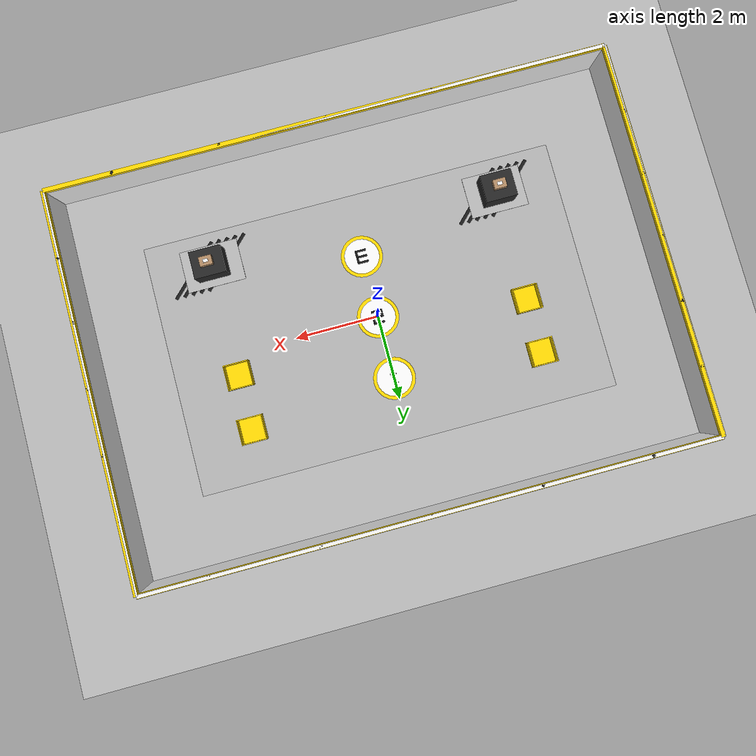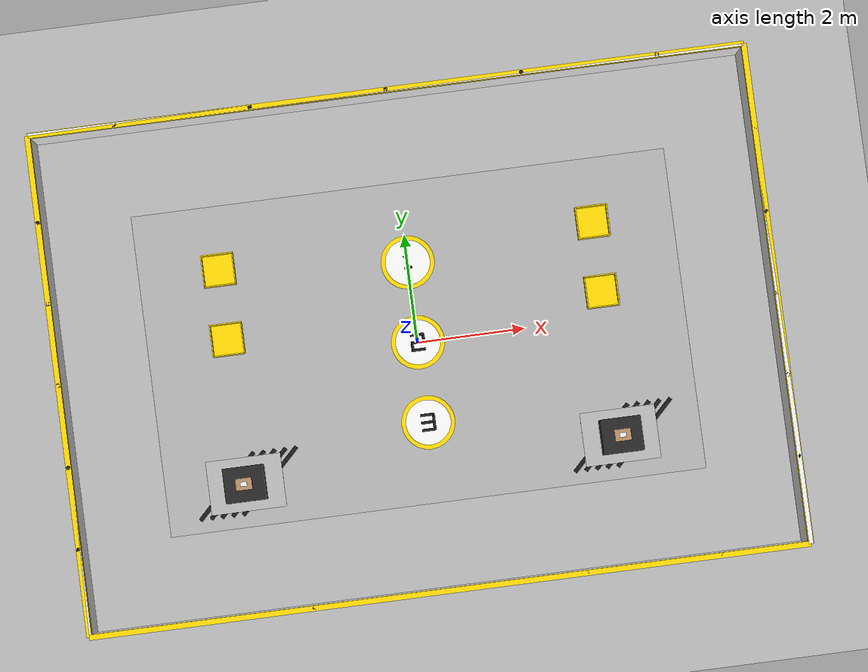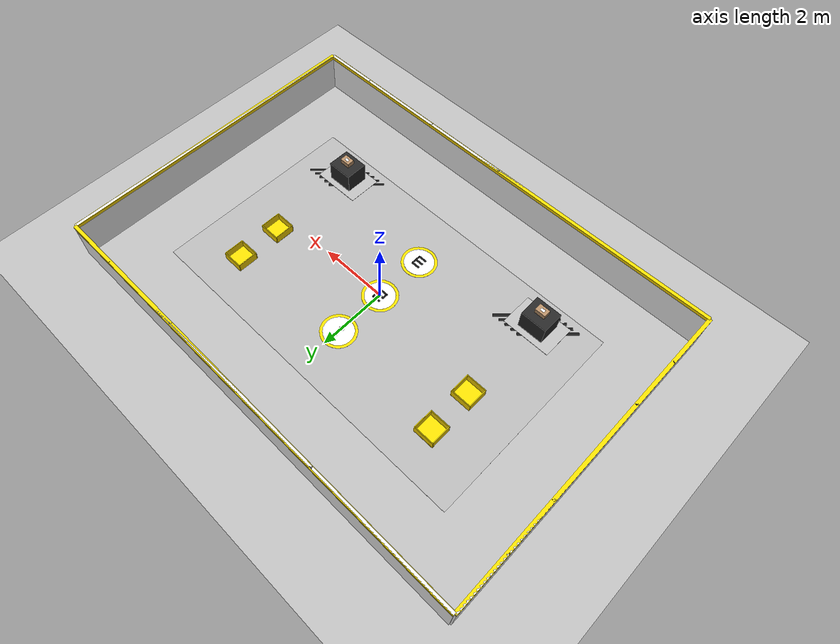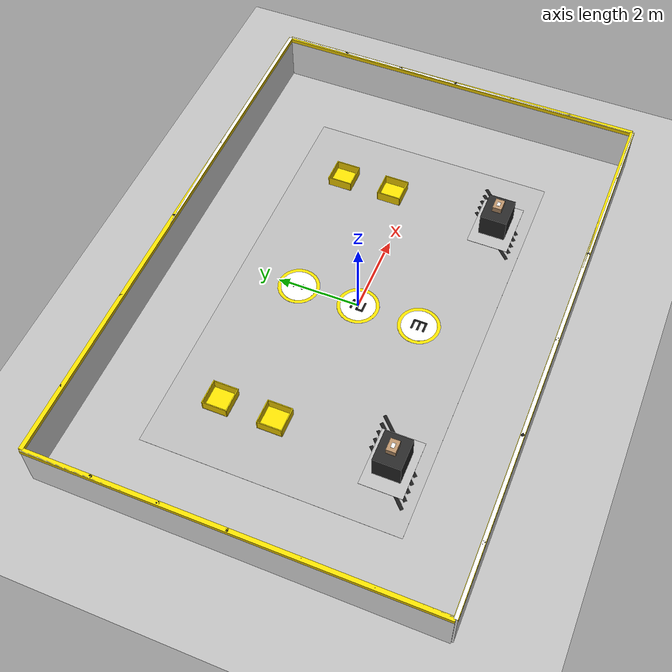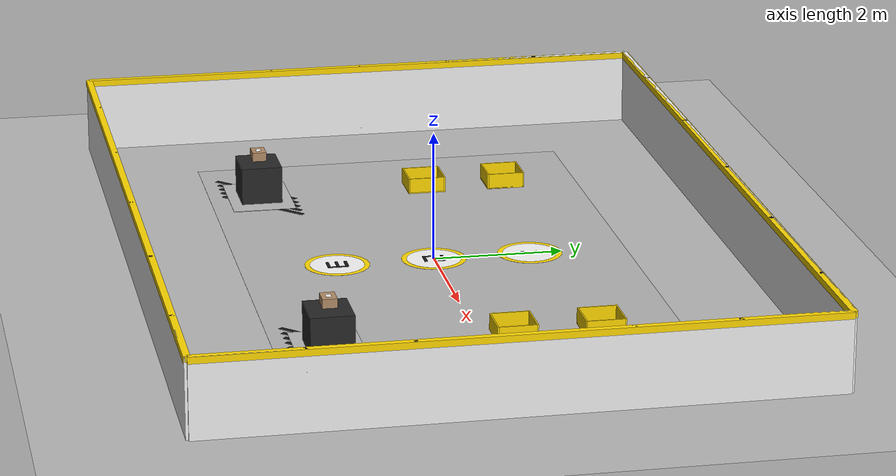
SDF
<?xml version="1.0"?>
<sdf version="1.6">
  <world name="warehouse_exact">

    <!-- Physique -->
    <physics name="default_physics" default="0" type="ode">
      <max_step_size>0.001</max_step_size>
      <real_time_factor>1</real_time_factor>
      <real_time_update_rate>1000</real_time_update_rate>
    </physics>

    <!-- Scène -->
    <scene>
      <ambient>0.6 0.6 0.6 1</ambient>
      <background>0.7 0.7 0.7 1</background>
      <shadows>true</shadows>
    </scene>

    <!-- Éclairage principal -->
    <include>
      <uri>model://sun</uri>
    </include>

    <!-- Lumières supplémentaires -->
    <light name="warehouse_light_1" type="point">
      <pose>0 0 5 0 0 0</pose>
      <diffuse>0.8 0.8 0.8 1</diffuse>
      <specular>0.2 0.2 0.2 1</specular>
      <attenuation>
        <range>20</range>
        <constant>0.5</constant>
        <linear>0.01</linear>
        <quadratic>0.001</quadratic>
      </attenuation>
      <cast_shadows>true</cast_shadows>
    </light>

    <!-- Sol gris clair uniforme -->
    <model name="ground_plane">
      <static>true</static>
      <link name="link">
        <collision name="collision">
          <geometry>
            <plane>
              <normal>0 0 1</normal>
              <size>100 100</size>
            </plane>
          </geometry>
          <surface>
            <friction>
              <ode>
                <mu>100</mu>
                <mu2>50</mu2>
              </ode>
            </friction>
          </surface>
        </collision>
        <visual name="visual">
          <cast_shadows>false</cast_shadows>
          <geometry>
            <plane>
              <normal>0 0 1</normal>
              <size>100 100</size>
            </plane>
          </geometry>
          <material>
            <ambient>0.72 0.72 0.72 1</ambient>
            <diffuse>0.72 0.72 0.72 1</diffuse>
          </material>
        </visual>
      </link>
    </model>

    <!-- Zone principale grise (10m x 6m) -->
    <model name="main_floor_afvrea">
      <pose>0 0 0.001 0 0 0</pose>
      <static>true</static>
      <link name="link">
        <visual name="visual">
          <geometry>
            <box>
              <size>10 6 0.002</size>
            </box>
          </geometry>
          <material>
            <ambient>0.70 0.70 0.70 1</ambient>
            <diffuse>0.70 0.70 0.70 1</diffuse>
          </material>
        </visual>
      </link>
    </model>

    <!-- ===== BARRIÈRES MODULAIRES BLANCHES ===== -->

    <!-- Barrière Nord -->
    <model name="barrier_north">
      <pose>0 4.6 0.6 0 0 0</pose>
      <static>false</static>
      <link name="link">
        <collision name="collision">
          <geometry>
            <box>
              <size>13.2 0.08 1.2</size>
            </box>
          </geometry>
        </collision>
        <visual name="panel">
          <geometry>
            <box>
              <size>13.2 0.08 1.2</size>
            </box>
          </geometry>
          <material>
            <ambient>0.95 0.95 0.95 1</ambient>
            <diffuse>0.95 0.95 0.95 1</diffuse>
          </material>
        </visual>
        <visual name="yellow_top">
          <pose>0 0 0.55 0 0 0</pose>
          <geometry>
            <box>
              <size>13.2 0.1 0.1</size>
            </box>
          </geometry>
          <material>
            <ambient>1 0.85 0 1</ambient>
            <diffuse>1 0.85 0 1</diffuse>
          </material>
        </visual>
      </link>
      <link name="support_1">
        <pose>-5 0 0 0 0 0</pose>
        <visual name="visual">
          <geometry>
            <cylinder>
              <radius>0.04</radius>
              <length>1.2</length>
            </cylinder>
          </geometry>
          <material>
            <ambient>0.1 0.1 0.1 1</ambient>
            <diffuse>0.1 0.1 0.1 1</diffuse>
          </material>
        </visual>
      </link>
      <link name="support_2">
        <pose>-2.5 0 0 0 0 0</pose>
        <visual name="visual">
          <geometry>
            <cylinder>
              <radius>0.04</radius>
              <length>1.2</length>
            </cylinder>
          </geometry>
          <material>
            <ambient>0.1 0.1 0.1 1</ambient>
            <diffuse>0.1 0.1 0.1 1</diffuse>
          </material>
        </visual>
      </link>
      <link name="support_3">
        <pose>0 0 0 0 0 0</pose>
        <visual name="visual">
          <geometry>
            <cylinder>
              <radius>0.04</radius>
              <length>1.2</length>
            </cylinder>
          </geometry>
          <material>
            <ambient>0.1 0.1 0.1 1</ambient>
            <diffuse>0.1 0.1 0.1 1</diffuse>
          </material>
        </visual>
      </link>
      <link name="support_4">
        <pose>2.5 0 0 0 0 0</pose>
        <visual name="visual">
          <geometry>
            <cylinder>
              <radius>0.04</radius>
              <length>1.2</length>
            </cylinder>
          </geometry>
          <material>
            <ambient>0.1 0.1 0.1 1</ambient>
            <diffuse>0.1 0.1 0.1 1</diffuse>
          </material>
        </visual>
      </link>
      <link name="support_5">
        <pose>5 0 0 0 0 0</pose>
        <visual name="visual">
          <geometry>
            <cylinder>
              <radius>0.04</radius>
              <length>1.2</length>
            </cylinder>
          </geometry>
          <material>
            <ambient>0.1 0.1 0.1 1</ambient>
            <diffuse>0.1 0.1 0.1 1</diffuse>
          </material>
        </visual>
      </link>
    </model>

    <!-- Barrière Sud -->
    <model name="barrier_south">
      <pose>0 -4.6 0.6 0 0 0</pose>
      <static>true</static>
      <link name="link">
        <collision name="collision">
          <geometry>
            <box>
              <size>13.2 0.08 1.2</size>
            </box>
          </geometry>
        </collision>
        <visual name="panel">
          <geometry>
            <box>
              <size>13.2 0.08 1.2</size>
            </box>
          </geometry>
          <material>
            <ambient>0.95 0.95 0.95 1</ambient>
            <diffuse>0.95 0.95 0.95 1</diffuse>
          </material>
        </visual>
        <visual name="yellow_top">
          <pose>0 0 0.55 0 0 0</pose>
          <geometry>
            <box>
              <size>13.2 0.1 0.1</size>
            </box>
          </geometry>
          <material>
            <ambient>1 0.85 0 1</ambient>
            <diffuse>1 0.85 0 1</diffuse>
          </material>
        </visual>
      </link>
      <link name="support_1">
        <pose>-5 0 0 0 0 0</pose>
        <visual name="visual">
          <geometry>
            <cylinder>
              <radius>0.04</radius>
              <length>1.2</length>
            </cylinder>
          </geometry>
          <material>
            <ambient>0.1 0.1 0.1 1</ambient>
            <diffuse>0.1 0.1 0.1 1</diffuse>
          </material>
        </visual>
      </link>
      <link name="support_2">
        <pose>-2.5 0 0 0 0 0</pose>
        <visual name="visual">
          <geometry>
            <cylinder>
              <radius>0.04</radius>
              <length>1.2</length>
            </cylinder>
          </geometry>
          <material>
            <ambient>0.1 0.1 0.1 1</ambient>
            <diffuse>0.1 0.1 0.1 1</diffuse>
          </material>
        </visual>
      </link>
      <link name="support_3">
        <pose>0 0 0 0 0 0</pose>
        <visual name="visual">
          <geometry>
            <cylinder>
              <radius>0.04</radius>
              <length>1.2</length>
            </cylinder>
          </geometry>
          <material>
            <ambient>0.1 0.1 0.1 1</ambient>
            <diffuse>0.1 0.1 0.1 1</diffuse>
          </material>
        </visual>
      </link>
      <link name="support_4">
        <pose>2.5 0 0 0 0 0</pose>
        <visual name="visual">
          <geometry>
            <cylinder>
              <radius>0.04</radius>
              <length>1.2</length>
            </cylinder>
          </geometry>
          <material>
            <ambient>0.1 0.1 0.1 1</ambient>
            <diffuse>0.1 0.1 0.1 1</diffuse>
          </material>
        </visual>
      </link>
      <link name="support_5">
        <pose>5 0 0 0 0 0</pose>
        <visual name="visual">
          <geometry>
            <cylinder>
              <radius>0.04</radius>
              <length>1.2</length>
            </cylinder>
          </geometry>
          <material>
            <ambient>0.1 0.1 0.1 1</ambient>
            <diffuse>0.1 0.1 0.1 1</diffuse>
          </material>
        </visual>
      </link>
    </model>

    <!-- Barrière Est -->
    <model name="barrier_east">
      <pose>6.6 0 0.6 0 0 0</pose>
      <static>true</static>
      <link name="link">
        <collision name="collision">
          <geometry>
            <box>
              <size>0.08 9.2 1.2</size>
            </box>
          </geometry>
        </collision>
        <visual name="panel">
          <geometry>
            <box>
              <size>0.08 9.2 1.2</size>
            </box>
          </geometry>
          <material>
            <ambient>0.95 0.95 0.95 1</ambient>
            <diffuse>0.95 0.95 0.95 1</diffuse>
          </material>
        </visual>
        <visual name="yellow_top">
          <pose>0 0 0.55 0 0 0</pose>
          <geometry>
            <box>
              <size>0.1 9.2 0.1</size>
            </box>
          </geometry>
          <material>
            <ambient>1 0.85 0 1</ambient>
            <diffuse>1 0.85 0 1</diffuse>
          </material>
        </visual>
      </link>
      <link name="support_1">
        <pose>0 -3 0 0 0 0</pose>
        <visual name="visual">
          <geometry>
            <cylinder>
              <radius>0.04</radius>
              <length>1.2</length>
            </cylinder>
          </geometry>
          <material>
            <ambient>0.1 0.1 0.1 1</ambient>
            <diffuse>0.1 0.1 0.1 1</diffuse>
          </material>
        </visual>
      </link>
      <link name="support_2">
        <pose>0 -1.5 0 0 0 0</pose>
        <visual name="visual">
          <geometry>
            <cylinder>
              <radius>0.04</radius>
              <length>1.2</length>
            </cylinder>
          </geometry>
          <material>
            <ambient>0.1 0.1 0.1 1</ambient>
            <diffuse>0.1 0.1 0.1 1</diffuse>
          </material>
        </visual>
      </link>
      <link name="support_3">
        <pose>0 0 0 0 0 0</pose>
        <visual name="visual">
          <geometry>
            <cylinder>
              <radius>0.04</radius>
              <length>1.2</length>
            </cylinder>
          </geometry>
          <material>
            <ambient>0.1 0.1 0.1 1</ambient>
            <diffuse>0.1 0.1 0.1 1</diffuse>
          </material>
        </visual>
      </link>
      <link name="support_4">
        <pose>0 1.5 0 0 0 0</pose>
        <visual name="visual">
          <geometry>
            <cylinder>
              <radius>0.04</radius>
              <length>1.2</length>
            </cylinder>
          </geometry>
          <material>
            <ambient>0.1 0.1 0.1 1</ambient>
            <diffuse>0.1 0.1 0.1 1</diffuse>
          </material>
        </visual>
      </link>
      <link name="support_5">
        <pose>0 3 0 0 0 0</pose>
        <visual name="visual">
          <geometry>
            <cylinder>
              <radius>0.04</radius>
              <length>1.2</length>
            </cylinder>
          </geometry>
          <material>
            <ambient>0.1 0.1 0.1 1</ambient>
            <diffuse>0.1 0.1 0.1 1</diffuse>
          </material>
        </visual>
      </link>
    </model>

    <!-- Barrière Ouest -->
    <model name="barrier_west">
      <pose>-6.6 0 0.6 0 0 0</pose>
      <static>true</static>
      <link name="link">
        <collision name="collision">
          <geometry>
            <box>
              <size>0.08 9.2 1.2</size>
            </box>
          </geometry>
        </collision>
        <visual name="panel">
          <geometry>
            <box>
              <size>0.08 9.2 1.2</size>
            </box>
          </geometry>
          <material>
            <ambient>0.95 0.95 0.95 1</ambient>
            <diffuse>0.95 0.95 0.95 1</diffuse>
          </material>
        </visual>
        <visual name="yellow_top">
          <pose>0 0 0.55 0 0 0</pose>
          <geometry>
            <box>
              <size>0.1 9.2 0.1</size>
            </box>
          </geometry>
          <material>
            <ambient>1 0.85 0 1</ambient>
            <diffuse>1 0.85 0 1</diffuse>
          </material>
        </visual>
      </link>
      <link name="support_1">
        <pose>0 -3 0 0 0 0</pose>
        <visual name="visual">
          <geometry>
            <cylinder>
              <radius>0.04</radius>
              <length>1.2</length>
            </cylinder>
          </geometry>
          <material>
            <ambient>0.1 0.1 0.1 1</ambient>
            <diffuse>0.1 0.1 0.1 1</diffuse>
          </material>
        </visual>
      </link>
      <link name="support_2">
        <pose>0 -1.5 0 0 0 0</pose>
        <visual name="visual">
          <geometry>
            <cylinder>
              <radius>0.04</radius>
              <length>1.2</length>
            </cylinder>
          </geometry>
          <material>
            <ambient>0.1 0.1 0.1 1</ambient>
            <diffuse>0.1 0.1 0.1 1</diffuse>
          </material>
        </visual>
      </link>
      <link name="support_3">
        <pose>0 0 0 0 0 0</pose>
        <visual name="visual">
          <geometry>
            <cylinder>
              <radius>0.04</radius>
              <length>1.2</length>
            </cylinder>
          </geometry>
          <material>
            <ambient>0.1 0.1 0.1 1</ambient>
            <diffuse>0.1 0.1 0.1 1</diffuse>
          </material>
        </visual>
      </link>
      <link name="support_4">
        <pose>0 1.5 0 0 0 0</pose>
        <visual name="visual">
          <geometry>
            <cylinder>
              <radius>0.04</radius>
              <length>1.2</length>
            </cylinder>
          </geometry>
          <material>
            <ambient>0.1 0.1 0.1 1</ambient>
            <diffuse>0.1 0.1 0.1 1</diffuse>
          </material>
        </visual>
      </link>
      <link name="support_5">
        <pose>0 3 0 0 0 0</pose>
        <visual name="visual">
          <geometry>
            <cylinder>
              <radius>0.04</radius>
              <length>1.2</length>
            </cylinder>
          </geometry>
          <material>
            <ambient>0.1 0.1 0.1 1</ambient>
            <diffuse>0.1 0.1 0.1 1</diffuse>
          </material>
        </visual>
      </link>
    </model>

    <!-- ===== CERCLES DE POSITIONNEMENT ===== -->

    <!-- Cercle 1 (haut) -->
    <model name="position_circle_1">
      <pose>0 1.5 0.002 0 0 0</pose>
      <static>true</static>
      <link name="link">
        <visual name="yellow_outer">
          <geometry>
            <cylinder>
              <radius>0.50</radius>
              <length>0.004</length>
            </cylinder>
          </geometry>
          <material>
            <ambient>1 0.85 0 1</ambient>
            <diffuse>1 0.85 0 1</diffuse>
          </material>
        </visual>
        <visual name="white_center">
          <pose>0 0 0.001 0 0 0</pose>
          <geometry>
            <cylinder>
              <radius>0.42</radius>
              <length>0.004</length>
            </cylinder>
          </geometry>
          <material>
            <ambient>0.98 0.98 0.98 1</ambient>
            <diffuse>0.98 0.98 0.98 1</diffuse>
          </material>
        </visual>
      <!-- ===== CHIFFRE 1 ===== -->
      <visual name="number_1_hat">
        <pose>-0.03 0.12 0.002 0 0 0.4</pose>
        <geometry>
          <box>
            <size>0.08 0.03 0.004</size>
          </box>
        </geometry>
        <material>
          <ambient>0.1 0.1 0.1 1</ambient>
          <diffuse>0.1 0.1 0.1 1</diffuse>
        </material>
      </visual>
      <!-- Barre verticale -->
      <visual name="number_1_body">
        <pose>0 0.04 0.002 0 0 0</pose>
        <geometry>
          <box>
            <size>0.06 0.26 0.004</size>
          </box>
        </geometry>
        <material>
          <ambient>0.1 0.1 0.1 1</ambient>
          <diffuse>0.1 0.1 0.1 1</diffuse>
        </material>
      </visual>
      <!-- Base du 1 -->
      <visual name="number_1_base">
        <pose>0 -0.10 0.002 0 0 0</pose>
        <geometry>
          <box>
            <size>0.14 0.05 0.004</size>
          </box>
        </geometry>
        <material>
          <ambient>0.1 0.1 0.1 1</ambient>
          <diffuse>0.1 0.1 0.1 1</diffuse>
        </material>
      </visual>

      </link>
    </model>

    <!-- Cercle 2 (milieu) -->
    <model name="position_circle_2">
      <pose>0 0 0.002 0 0 0</pose>
      <static>true</static>
      <link name="link">
        <visual name="yellow_outer">
          <geometry>
            <cylinder>
              <radius>0.50</radius>
              <length>0.004</length>
            </cylinder>
          </geometry>
          <material>
            <ambient>1 0.85 0 1</ambient>
            <diffuse>1 0.85 0 1</diffuse>
          </material>
        </visual>
        <visual name="white_center">
          <pose>0 0 0.001 0 0 0</pose>
          <geometry>
            <cylinder>
              <radius>0.42</radius>
              <length>0.004</length>
            </cylinder>
          </geometry>
          <material>
            <ambient>0.98 0.98 0.98 1</ambient>
            <diffuse>0.98 0.98 0.98 1</diffuse>
          </material>
        </visual>
      <!-- ===== CHIFFRE 2 ===== -->

        <!-- Segment A (haut) -->
        <visual name="seg_A">
          <pose>0 0.14 0.002 0 0 0</pose>
          <geometry>
            <box>
              <size>0.26 0.05 0.004</size>
            </box>
          </geometry>
          <material>
            <ambient>0.1 0.1 0.1 1</ambient>
            <diffuse>0.1 0.1 0.1 1</diffuse>
          </material>
        </visual>

        <!-- Segment B (haut droite) -->
        <visual name="seg_B">
          <pose>0.11 0.05 0.002 0 0 0</pose>
          <geometry>
            <box>
              <size>0.05 0.18 0.004</size>
            </box>
          </geometry>
          <material>
            <ambient>0.1 0.1 0.1 1</ambient>
            <diffuse>0.1 0.1 0.1 1</diffuse>
          </material>
        </visual>

        <!-- Segment G (milieu) -->
        <visual name="seg_G">
          <pose>0 0.00 0.002 0 0 0</pose>
          <geometry>
            <box>
              <size>0.26 0.05 0.004</size>
            </box>
          </geometry>
          <material>
            <ambient>0.1 0.1 0.1 1</ambient>
            <diffuse>0.1 0.1 0.1 1</diffuse>
          </material>
        </visual>

        <!-- Segment E (bas gauche) -->
        <visual name="seg_E">
          <pose>-0.11 -0.07 0.002 0 0 0</pose>
          <geometry>
            <box>
              <size>0.05 0.18 0.004</size>
            </box>
          </geometry>
          <material>
            <ambient>0.1 0.1 0.1 1</ambient>
            <diffuse>0.1 0.1 0.1 1</diffuse>
          </material>
        </visual>

        <!-- Segment D (bas) -->
        <visual name="seg_D">
          <pose>0 -0.14 0.002 0 0 0</pose>
          <geometry>
            <box>
              <size>0.26 0.05 0.004</size>
            </box>
          </geometry>
          <material>
            <ambient>0.1 0.1 0.1 1</ambient>
            <diffuse>0.1 0.1 0.1 1</diffuse>
          </material>
        </visual>

      </link>
    </model>

    <!-- Cercle 3 (bas) -->
    <model name="position_circle_3">
      <pose>0 -1.5 0.002 0 0 0</pose>
      <static>true</static>
      <link name="link">
        <visual name="yellow_outer">
          <geometry>
            <cylinder>
              <radius>0.50</radius>
              <length>0.004</length>
            </cylinder>
          </geometry>
          <material>
            <ambient>1 0.85 0 1</ambient>
            <diffuse>1 0.85 0 1</diffuse>
          </material>
        </visual>
        <visual name="white_center">
          <pose>0 0 0.001 0 0 0</pose>
          <geometry>
            <cylinder>
              <radius>0.42</radius>
              <length>0.004</length>
            </cylinder>
          </geometry>
          <material>
            <ambient>0.98 0.98 0.98 1</ambient>
            <diffuse>0.98 0.98 0.98 1</diffuse>
          </material>
        </visual>
        <!-- ===== CHIFFRE 3 (STYLE DIGITAL) ===== -->

        <!-- Segment A (haut) -->
        <visual name="seg_A">
          <pose>0 0.14 0.002 0 0 0</pose>
          <geometry>
            <box>
              <size>0.26 0.05 0.004</size>
            </box>
          </geometry>
          <material>
            <ambient>0.1 0.1 0.1 1</ambient>
            <diffuse>0.1 0.1 0.1 1</diffuse>
          </material>
        </visual>

        <!-- Segment B (haut droite) -->
        <visual name="seg_B">
          <pose>0.11 0.05 0.002 0 0 0</pose>
          <geometry>
            <box>
              <size>0.05 0.18 0.004</size>
            </box>
          </geometry>
          <material>
            <ambient>0.1 0.1 0.1 1</ambient>
            <diffuse>0.1 0.1 0.1 1</diffuse>
          </material>
        </visual>

        <!-- Segment G (milieu) -->
        <visual name="seg_G">
          <pose>0 0.00 0.002 0 0 0</pose>
          <geometry>
            <box>
              <size>0.26 0.05 0.004</size>
            </box>
          </geometry>
          <material>
            <ambient>0.1 0.1 0.1 1</ambient>
            <diffuse>0.1 0.1 0.1 1</diffuse>
          </material>
        </visual>

        <!-- Segment C (bas droite) -->
        <visual name="seg_C">
          <pose>0.11 -0.07 0.002 0 0 0</pose>
          <geometry>
            <box>
              <size>0.05 0.18 0.004</size>
            </box>
          </geometry>
          <material>
            <ambient>0.1 0.1 0.1 1</ambient>
            <diffuse>0.1 0.1 0.1 1</diffuse>
          </material>
        </visual>

        <!-- Segment D (bas) -->
        <visual name="seg_D">
          <pose>0 -0.14 0.002 0 0 0</pose>
          <geometry>
            <box>
              <size>0.26 0.05 0.004</size>
            </box>
          </geometry>
          <material>
            <ambient>0.1 0.1 0.1 1</ambient>
            <diffuse>0.1 0.1 0.1 1</diffuse>
          </material>
        </visual>

      </link>
    </model>

    <!-- ===== CAISSES JAUNES (4 au total) ===== -->

    <!-- Caisse gauche haut -->

    <model name="yellow_crate_left_top">
      <pose>-3.5 1.8 0.125 0 0 0</pose>
      <static>true</static>

      <!-- FOND -->
      <link name="bottom">
        <pose>0 0 -0.115 0 0 0</pose>
        <collision name="collision">
          <geometry>
            <box>
              <size>0.6 0.6 0.02</size>
            </box>
          </geometry>
        </collision>
        <visual name="visual">
          <geometry>
            <box>
              <size>0.6 0.6 0.02</size>
            </box>
          </geometry>
          <material>
            <ambient>1 0.85 0 1</ambient>
            <diffuse>1 0.85 0 1</diffuse>
          </material>
        </visual>
      </link>

      <!-- MUR AVANT -->
      <link name="wall_front">
        <pose>0 0.29 0 0 0 0</pose>
        <collision name="collision">
          <geometry>
            <box>
              <size>0.6 0.02 0.25</size>
            </box>
          </geometry>
        </collision>
        <visual name="visual">
          <geometry>
            <box>
              <size>0.6 0.02 0.25</size>
            </box>
          </geometry>
          <material>
            <ambient>1 0.85 0 1</ambient>
            <diffuse>1 0.85 0 1</diffuse>
          </material>
        </visual>
      </link>

      <!-- MUR ARRIÈRE -->
      <link name="wall_back">
        <pose>0 -0.29 0 0 0 0</pose>
        <collision name="collision">
          <geometry>
            <box>
              <size>0.6 0.02 0.25</size>
            </box>
          </geometry>
        </collision>
        <visual name="visual">
          <geometry>
            <box>
              <size>0.6 0.02 0.25</size>
            </box>
          </geometry>
          <material>
            <ambient>1 0.85 0 1</ambient>
            <diffuse>1 0.85 0 1</diffuse>
          </material>
        </visual>
      </link>

      <!-- MUR GAUCHE -->
      <link name="wall_left">
        <pose>-0.29 0 0 0 0 0</pose>
        <collision name="collision">
          <geometry>
            <box>
              <size>0.02 0.56 0.25</size>
            </box>
          </geometry>
        </collision>
        <visual name="visual">
          <geometry>
            <box>
              <size>0.02 0.56 0.25</size>
            </box>
          </geometry>
          <material>
            <ambient>1 0.85 0 1</ambient>
            <diffuse>1 0.85 0 1</diffuse>
          </material>
        </visual>
      </link>

      <!-- MUR DROIT -->
      <link name="wall_right">
        <pose>0.29 0 0 0 0 0</pose>
        <collision name="collision">
          <geometry>
            <box>
              <size>0.02 0.56 0.25</size>
            </box>
          </geometry>
        </collision>
        <visual name="visual">
          <geometry>
            <box>
              <size>0.02 0.56 0.25</size>
            </box>
          </geometry>
          <material>
            <ambient>1 0.85 0 1</ambient>
            <diffuse>1 0.85 0 1</diffuse>
          </material>
        </visual>
      </link>

    </model>

    <!-- Caisse gauche milieu -->
    <!-- ===== BAC JAUNE CREUX (gauche milieu) ===== -->
    <model name="yellow_crate_left_middle">
        <pose>-3.5 0.5 0.125 0 0 0</pose>
        <static>true</static>

        <!-- FOND -->
        <link name="bottom">
          <pose>0 0 -0.115 0 0 0</pose>
          <collision name="collision">
            <geometry>
              <box>
                <size>0.6 0.6 0.02</size>
              </box>
            </geometry>
          </collision>
          <visual name="visual">
            <geometry>
              <box>
                <size>0.6 0.6 0.02</size>
              </box>
            </geometry>
            <material>
              <ambient>1 0.85 0 1</ambient>
              <diffuse>1 0.85 0 1</diffuse>
            </material>
          </visual>
        </link>

        <!-- MUR AVANT -->
        <link name="wall_front">
          <pose>0 0.29 0 0 0 0</pose>
          <collision name="collision">
            <geometry>
              <box>
                <size>0.6 0.02 0.25</size>
              </box>
            </geometry>
          </collision>
          <visual name="visual">
            <geometry>
              <box>
                <size>0.6 0.02 0.25</size>
              </box>
            </geometry>
            <material>
              <ambient>1 0.85 0 1</ambient>
              <diffuse>1 0.85 0 1</diffuse>
            </material>
          </visual>
        </link>

        <!-- MUR ARRIÈRE -->
        <link name="wall_back">
          <pose>0 -0.29 0 0 0 0</pose>
          <collision name="collision">
            <geometry>
              <box>
                <size>0.6 0.02 0.25</size>
              </box>
            </geometry>
          </collision>
          <visual name="visual">
            <geometry>
              <box>
                <size>0.6 0.02 0.25</size>
              </box>
            </geometry>
            <material>
              <ambient>1 0.85 0 1</ambient>
              <diffuse>1 0.85 0 1</diffuse>
            </material>
          </visual>
        </link>

        <!-- MUR GAUCHE -->
        <link name="wall_left">
          <pose>-0.29 0 0 0 0 0</pose>
          <collision name="collision">
            <geometry>
              <box>
                <size>0.02 0.56 0.25</size>
              </box>
            </geometry>
          </collision>
          <visual name="visual">
            <geometry>
              <box>
                <size>0.02 0.56 0.25</size>
              </box>
            </geometry>
            <material>
              <ambient>1 0.85 0 1</ambient>
              <diffuse>1 0.85 0 1</diffuse>
            </material>
          </visual>
        </link>

        <!-- MUR DROIT -->
        <link name="wall_right">
          <pose>0.29 0 0 0 0 0</pose>
          <collision name="collision">
            <geometry>
              <box>
                <size>0.02 0.56 0.25</size>
              </box>
            </geometry>
          </collision>
          <visual name="visual">
            <geometry>
              <box>
                <size>0.02 0.56 0.25</size>
              </box>
            </geometry>
            <material>
              <ambient>1 0.85 0 1</ambient>
              <diffuse>1 0.85 0 1</diffuse>
            </material>
          </visual>
        </link>

    </model>

    <!-- Caisse droite haut -->
    <!-- ===== BAC JAUNE CREUX (droite haut) ===== -->
    <model name="yellow_crate_right_top">
      <pose>3.5 1.8 0.125 0 0 0</pose>
      <static>true</static>

      <!-- FOND -->
      <link name="bottom">
        <pose>0 0 -0.115 0 0 0</pose>
        <collision name="collision">
          <geometry>
            <box>
              <size>0.6 0.6 0.02</size>
            </box>
          </geometry>
        </collision>
        <visual name="visual">
          <geometry>
            <box>
              <size>0.6 0.6 0.02</size>
            </box>
          </geometry>
          <material>
            <ambient>1 0.85 0 1</ambient>
            <diffuse>1 0.85 0 1</diffuse>
          </material>
        </visual>
      </link>

      <!-- MUR AVANT -->
      <link name="wall_front">
        <pose>0 0.29 0 0 0 0</pose>
        <collision name="collision">
          <geometry>
            <box>
              <size>0.6 0.02 0.25</size>
            </box>
          </geometry>
        </collision>
        <visual name="visual">
          <geometry>
            <box>
              <size>0.6 0.02 0.25</size>
            </box>
          </geometry>
          <material>
            <ambient>1 0.85 0 1</ambient>
            <diffuse>1 0.85 0 1</diffuse>
          </material>
        </visual>
      </link>

      <!-- MUR ARRIÈRE -->
      <link name="wall_back">
        <pose>0 -0.29 0 0 0 0</pose>
        <collision name="collision">
          <geometry>
            <box>
              <size>0.6 0.02 0.25</size>
            </box>
          </geometry>
        </collision>
        <visual name="visual">
          <geometry>
            <box>
              <size>0.6 0.02 0.25</size>
            </box>
          </geometry>
          <material>
            <ambient>1 0.85 0 1</ambient>
            <diffuse>1 0.85 0 1</diffuse>
          </material>
        </visual>
      </link>

      <!-- MUR GAUCHE -->
      <link name="wall_left">
        <pose>-0.29 0 0 0 0 0</pose>
        <collision name="collision">
          <geometry>
            <box>
              <size>0.02 0.56 0.25</size>
            </box>
          </geometry>
        </collision>
        <visual name="visual">
          <geometry>
            <box>
              <size>0.02 0.56 0.25</size>
            </box>
          </geometry>
          <material>
            <ambient>1 0.85 0 1</ambient>
            <diffuse>1 0.85 0 1</diffuse>
          </material>
        </visual>
      </link>

      <!-- MUR DROIT -->
      <link name="wall_right">
        <pose>0.29 0 0 0 0 0</pose>
        <collision name="collision">
          <geometry>
            <box>
              <size>0.02 0.56 0.25</size>
            </box>
          </geometry>
        </collision>
        <visual name="visual">
          <geometry>
            <box>
              <size>0.02 0.56 0.25</size>
            </box>
          </geometry>
          <material>
            <ambient>1 0.85 0 1</ambient>
            <diffuse>1 0.85 0 1</diffuse>
          </material>
        </visual>
      </link>

    </model>

    <!-- Caisse droite milieu -->
    <!-- ===== BAC JAUNE CREUX (droite milieu) ===== -->
    <model name="yellow_crate_right_middle">
      <pose>3.5 0.5 0.125 0 0 0</pose>
      <static>true</static>

      <!-- FOND -->
      <link name="bottom">
        <pose>0 0 -0.115 0 0 0</pose>
        <collision name="collision">
          <geometry>
            <box>
              <size>0.6 0.6 0.02</size>
            </box>
          </geometry>
        </collision>
        <visual name="visual">
          <geometry>
            <box>
              <size>0.6 0.6 0.02</size>
            </box>
          </geometry>
          <material>
            <ambient>1 0.85 0 1</ambient>
            <diffuse>1 0.85 0 1</diffuse>
          </material>
        </visual>
      </link>

      <!-- MUR AVANT -->
      <link name="wall_front">
        <pose>0 0.29 0 0 0 0</pose>
        <collision name="collision">
          <geometry>
            <box>
              <size>0.6 0.02 0.25</size>
            </box>
          </geometry>
        </collision>
        <visual name="visual">
          <geometry>
            <box>
              <size>0.6 0.02 0.25</size>
            </box>
          </geometry>
          <material>
            <ambient>1 0.85 0 1</ambient>
            <diffuse>1 0.85 0 1</diffuse>
          </material>
        </visual>
      </link>

      <!-- MUR ARRIÈRE -->
      <link name="wall_back">
        <pose>0 -0.29 0 0 0 0</pose>
        <collision name="collision">
          <geometry>
            <box>
              <size>0.6 0.02 0.25</size>
            </box>
          </geometry>
        </collision>
        <visual name="visual">
          <geometry>
            <box>
              <size>0.6 0.02 0.25</size>
            </box>
          </geometry>
          <material>
            <ambient>1 0.85 0 1</ambient>
            <diffuse>1 0.85 0 1</diffuse>
          </material>
        </visual>
      </link>

      <!-- MUR GAUCHE -->
      <link name="wall_left">
        <pose>-0.29 0 0 0 0 0</pose>
        <collision name="collision">
          <geometry>
            <box>
              <size>0.02 0.56 0.25</size>
            </box>
          </geometry>
        </collision>
        <visual name="visual">
          <geometry>
            <box>
              <size>0.02 0.56 0.25</size>
            </box>
          </geometry>
          <material>
            <ambient>1 0.85 0 1</ambient>
            <diffuse>1 0.85 0 1</diffuse>
          </material>
        </visual>
      </link>

      <!-- MUR DROIT -->
      <link name="wall_right">
        <pose>0.29 0 0 0 0 0</pose>
        <collision name="collision">
          <geometry>
            <box>
              <size>0.02 0.56 0.25</size>
            </box>
          </geometry>
        </collision>
        <visual name="visual">
          <geometry>
            <box>
              <size>0.02 0.56 0.25</size>
            </box>
          </geometry>
          <material>
            <ambient>1 0.85 0 1</ambient>
            <diffuse>1 0.85 0 1</diffuse>
          </material>
        </visual>
      </link>

    </model>

    <!-- ===== ZONE START/STOP (JAUNE - GAUCHE) ===== -->

    <model name="start_stop_zone">
      <static>false</static>
      <pose>-3.5 -2.2 0.005 0 0 0</pose>

      <link name="link">

        <collision name="collision">
          <geometry>
            <box>
              <size>1.4 1.0 0.01</size>
            </box>
          </geometry>
        </collision>

        <visual name="start_stop_visual">
          <geometry>
            <box>
              <size>1.4 1.0 0.01</size>
            </box>
          </geometry>

          <cast_shadows>false</cast_shadows>

          <material>
            <script>
                <uri>file:///home/douaa/Lab_moveit/src/my_gazebo_world/materials/scripts/start_stop.material</uri>
                <uri>file:///home/douaa/Lab_moveit/src/my_gazebo_world/materials/textures/start_stop_zone_no_alpha.png</uri>
              <name>StartStopZone</name>
            </script>
          </material>

        </visual>
      </link>
    </model>

    <!-- ===== ZONE CHARGING (VERTE - DROITE) ===== -->

    <model name="charging_zone">
      <static>false</static>
      <pose>3.5 -2.2 0.005 0 0 0</pose>

      <link name="link">

        <!-- Collision (important pour pouvoir le sélectionner et le déplacer) -->
        <collision name="collision">
          <geometry>
            <box>
              <size>1.4 1.0 0.01</size>
            </box>
          </geometry>
        </collision>

        <!-- Visuel -->
        <visual name="charging_visual">
          <geometry>
            <box>
              <size>1.4 1.0 0.01</size>
            </box>
          </geometry>

          <cast_shadows>false</cast_shadows>

          <material>
            <script>
              <uri>file:///home/douaa/Lab_moveit/src/my_gazebo_world/materials/scripts/charging.material</uri>
              <uri>file:///home/douaa/Lab_moveit/src/my_gazebo_world/materials/textures/charging_zone_no_alpha.png</uri>
              <name>ChargingZone</name>
            </script>
          </material>

        </visual>
      </link>
    </model>

    <!-- ===== STATION GAUCHE AVEC ZONE DE SÉCURITÉ ===== -->

    <!-- Zone de sécurité gauche (bandes diagonales) -->
    <model name="safety_zone_left">
      <pose>-3.5 -2.2 0.004 0 0 0</pose>
      <static>true</static>
      <link name="link">
        <visual name="black_stripe_1">
          <pose>-0.35 0 0 0 0 0.785</pose>
          <geometry>
            <box>
              <size>1.6 0.08 0.002</size>
            </box>
          </geometry>
          <material>
            <ambient>0.1 0.1 0.1 1</ambient>
            <diffuse>0.1 0.1 0.1 1</diffuse>
          </material>
        </visual>
        <visual name="black_stripe_2">
          <pose>-0.15 0 0 0 0 0.785</pose>
          <geometry>
            <box>
              <size>1.6 0.08 0.002</size>
            </box>
          </geometry>
          <material>
            <ambient>0.1 0.1 0.1 1</ambient>
            <diffuse>0.1 0.1 0.1 1</diffuse>
          </material>
        </visual>
        <visual name="black_stripe_3">
          <pose>0.05 0 0 0 0 0.785</pose>
          <geometry>
            <box>
              <size>1.6 0.08 0.002</size>
            </box>
          </geometry>
          <material>
            <ambient>0.1 0.1 0.1 1</ambient>
            <diffuse>0.1 0.1 0.1 1</diffuse>
          </material>
        </visual>
        <visual name="black_stripe_4">
          <pose>0.25 0 0 0 0 0.785</pose>
          <geometry>
            <box>
              <size>1.6 0.08 0.002</size>
            </box>
          </geometry>
          <material>
            <ambient>0.1 0.1 0.1 1</ambient>
            <diffuse>0.1 0.1 0.1 1</diffuse>
          </material>
        </visual>
        <visual name="black_stripe_5">
          <pose>0.45 0 0 0 0 0.785</pose>
          <geometry>
            <box>
              <size>1.6 0.08 0.002</size>
            </box>
          </geometry>
          <material>
            <ambient>0.1 0.1 0.1 1</ambient>
            <diffuse>0.1 0.1 0.1 1</diffuse>
          </material>
        </visual>
      </link>
    </model>

    <!-- Table noire gauche -->
    <model name="black_table_left">
      <pose>-3.5 -2.2 0.30 0 0 0</pose>
      <static>true</static>
      <link name="link">
        <collision name="collision">
          <geometry>
            <box>
              <size>0.75 0.65 0.60</size>
            </box>
          </geometry>
        </collision>
        <visual name="visual">
          <geometry>
            <box>
              <size>0.75 0.65 0.60</size>
            </box>
          </geometry>
          <material>
            <ambient>0.15 0.15 0.15 1</ambient>
            <diffuse>0.15 0.15 0.15 1</diffuse>
          </material>
        </visual>
      </link>
    </model>

    <!-- Colis carton sur table gauche -->
    <model name="cardboard_package_left">
      <pose>-3.5 -2.2 0.72 0 0 0</pose>
      <static>true</static>
      <link name="link">
        <collision name="collision">
          <geometry>
            <box>
              <size>0.30 0.22 0.14</size>
            </box>
          </geometry>
        </collision>
        <visual name="visual">
          <geometry>
            <box>
              <size>0.30 0.22 0.14</size>
            </box>
          </geometry>
          <material>
            <ambient>0.7 0.55 0.4 1</ambient>
            <diffuse>0.7 0.55 0.4 1</diffuse>
          </material>
        </visual>
        <visual name="label">
          <pose>0 0 0.071 0 0 0</pose>
          <geometry>
            <box>
              <size>0.12 0.08 0.001</size>
            </box>
          </geometry>
          <material>
            <ambient>0.95 0.95 0.95 1</ambient>
            <diffuse>0.95 0.95 0.95 1</diffuse>
          </material>
        </visual>
      </link>
    </model>

    <!-- ===== STATION DROITE AVEC ZONE DE SÉCURITÉ ===== -->

    <!-- Zone de sécurité droite -->
    <model name="safety_zone_right">
      <pose>3.5 -2.2 0.004 0 0 0</pose>
      <static>true</static>
      <link name="link">
        <visual name="black_stripe_1">
          <pose>-0.35 0 0 0 0 0.785</pose>
          <geometry>
            <box>
              <size>1.6 0.08 0.002</size>
            </box>
          </geometry>
          <material>
            <ambient>0.1 0.1 0.1 1</ambient>
            <diffuse>0.1 0.1 0.1 1</diffuse>
          </material>
        </visual>
        <visual name="black_stripe_2">
          <pose>-0.15 0 0 0 0 0.785</pose>
          <geometry>
            <box>
              <size>1.6 0.08 0.002</size>
            </box>
          </geometry>
          <material>
            <ambient>0.1 0.1 0.1 1</ambient>
            <diffuse>0.1 0.1 0.1 1</diffuse>
          </material>
        </visual>
        <visual name="black_stripe_3">
          <pose>0.05 0 0 0 0 0.785</pose>
          <geometry>
            <box>
              <size>1.6 0.08 0.002</size>
            </box>
          </geometry>
          <material>
            <ambient>0.1 0.1 0.1 1</ambient>
            <diffuse>0.1 0.1 0.1 1</diffuse>
          </material>
        </visual>
        <visual name="black_stripe_4">
          <pose>0.25 0 0 0 0 0.785</pose>
          <geometry>
            <box>
              <size>1.6 0.08 0.002</size>
            </box>
          </geometry>
          <material>
            <ambient>0.1 0.1 0.1 1</ambient>
            <diffuse>0.1 0.1 0.1 1</diffuse>
          </material>
        </visual>
        <visual name="black_stripe_5">
          <pose>0.45 0 0 0 0 0.785</pose>
          <geometry>
            <box>
              <size>1.6 0.08 0.002</size>
            </box>
          </geometry>
          <material>
            <ambient>0.1 0.1 0.1 1</ambient>
            <diffuse>0.1 0.1 0.1 1</diffuse>
          </material>
        </visual>
      </link>
    </model>

    <!-- Table noire droite -->
    <model name="black_table_right">
      <pose>3.5 -2.2 0.30 0 0 0</pose>
      <static>true</static>
      <link name="link">
        <collision name="collision">
          <geometry>
            <box>
              <size>0.75 0.65 0.60</size>
            </box>
          </geometry>
        </collision>
        <visual name="visual">
          <geometry>
            <box>
              <size>0.75 0.65 0.60</size>
            </box>
          </geometry>
          <material>
            <ambient>0.15 0.15 0.15 1</ambient>
            <diffuse>0.15 0.15 0.15 1</diffuse>
          </material>
        </visual>
      </link>
    </model>

    <!-- Colis carton sur table droite -->
    <model name="cardboard_package_right">
      <pose>3.5 -2.2 0.72 0 0 0</pose>
      <static>true</static>
      <link name="link">
        <collision name="collision">
          <geometry>
            <box>
              <size>0.30 0.22 0.14</size>
            </box>
          </geometry>
        </collision>
        <visual name="visual">
          <geometry>
            <box>
              <size>0.30 0.22 0.14</size>
            </box>
          </geometry>
          <material>
            <ambient>0.7 0.55 0.4 1</ambient>
            <diffuse>0.7 0.55 0.4 1</diffuse>
          </material>
        </visual>
        <visual name="label">
          <pose>0 0 0.071 0 0 0</pose>
          <geometry>
            <box>
              <size>0.12 0.08 0.001</size>
            </box>
          </geometry>
          <material>
            <ambient>0.95 0.95 0.95 1</ambient>
            <diffuse>0.95 0.95 0.95 1</diffuse>
          </material>
        </visual>
      </link>
    </model>

    <!-- Configuration de la caméra -->
    <gui fullscreen='0'>
      <camera name='user_camera'>
        <pose>-0.5 -8 8 0 0.7 1.57</pose>
        <view_controller>orbit</view_controller>
      </camera>
    </gui>

  </world>
</sdf>
